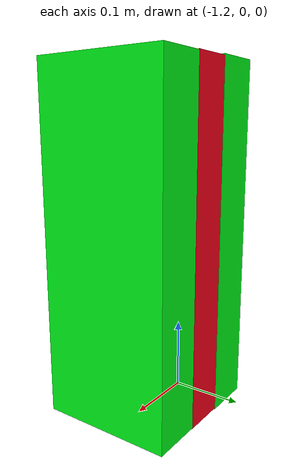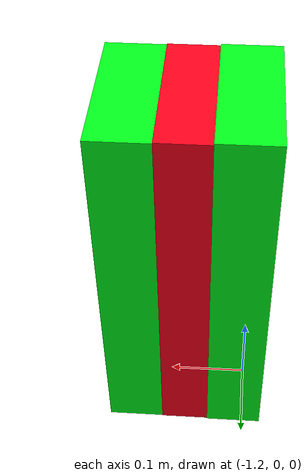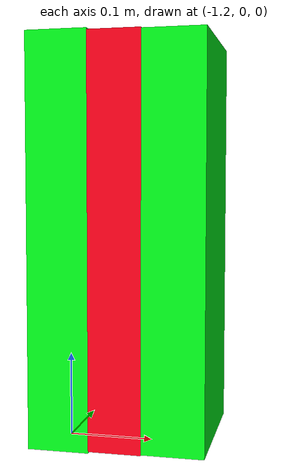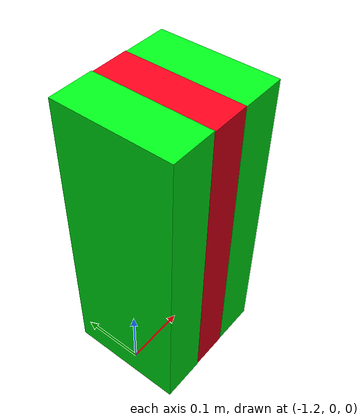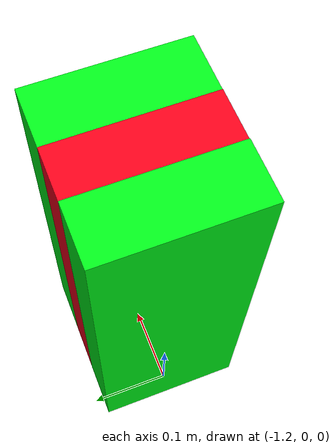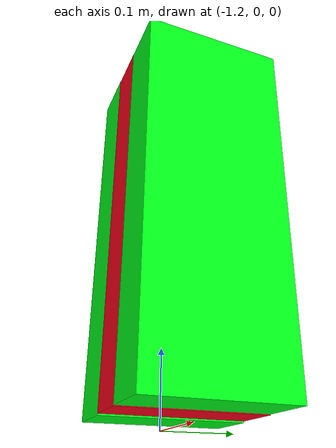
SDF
<?xml version='1.0'?>
<sdf version='1.6'>
  <model name='tress_vic_friendly'>
    <link name='link_0'>
      <inertial>
        <mass>9176.46</mass>
        <inertia>
          <ixx>937.577</ixx>
          <ixy>0</ixy>
          <ixz>0</ixz>
          <iyy>937.577</iyy>
          <iyz>0</iyz>
          <izz>1e+16</izz>
        </inertia>
        <pose frame=''>0 0 0 0 -0 0</pose>
      </inertial>
      <pose frame=''>-0.913403 0 0.2412 0 -0 0</pose>
      <gravity>1</gravity>
      <self_collide>0</self_collide>
      <kinematic>0</kinematic>
      <enable_wind>0</enable_wind>
      <visual name='ModelPreview_1::link_0::visual_2'>
        <pose frame=''>-0.145 0 0 0 -0 0</pose>
        <geometry>
          <box>
            <size>0.07 0.18 0.46</size>
          </box>
        </geometry>
        <material>
          <lighting>1</lighting>
          <script>
            <uri>file://media/materials/scripts/gazebo.material</uri>
            <name>Gazebo/Grey</name>
          </script>
          <shader type='vertex'>
            <normal_map>__default__</normal_map>
          </shader>
          <ambient>0 1 0.1 0</ambient>
          <diffuse>0.7 0.7 0.7 1</diffuse>
          <specular>0.01 0.01 0.01 1</specular>
          <emissive>0 0 0 1</emissive>
        </material>
        <transparency>0.1</transparency>
        <cast_shadows>1</cast_shadows>
      </visual>
      <visual name='ModelPreview_1::link_0::visual_1'>
        <pose frame=''>-0.275 0 0 0 -0 0</pose>
        <geometry>
          <box>
            <size>0.07 0.18 0.465462</size>
          </box>
        </geometry>
        <material>
          <lighting>1</lighting>
          <script>
            <uri>file://media/materials/scripts/gazebo.material</uri>
            <name>Gazebo/Grey</name>
          </script>
          <shader type='vertex'>
            <normal_map>__default__</normal_map>
          </shader>
          <ambient>0 1 0.1 1</ambient>
          <diffuse>0.7 0.7 0.7 1</diffuse>
          <specular>0.01 0.01 0.01 1</specular>
          <emissive>0 0 0 1</emissive>
        </material>
        <transparency>0.1</transparency>
        <cast_shadows>1</cast_shadows>
      </visual>
      <visual name='visual'>
        <pose frame=''>-0.21 0 0 0 -0 0</pose>
        <geometry>
          <box>
            <size>0.06 0.18 0.4618</size>
          </box>
        </geometry>
        <material>
          <lighting>1</lighting>
          <script>
            <uri>file://media/materials/scripts/gazebo.material</uri>
            <name>Gazebo/Grey</name>
          </script>
          <shader type='vertex'>
            <normal_map>__default__</normal_map>
          </shader>
          <ambient>1 0 0.1 0</ambient>
          <diffuse>0.7 0.7 0.7 1</diffuse>
          <specular>0.01 0.01 0.01 1</specular>
          <emissive>0 0 0 1</emissive>
        </material>
        <transparency>0.1</transparency>
        <cast_shadows>1</cast_shadows>
      </visual>
      <collision name='collision_2'>
        <laser_retro>0</laser_retro>
        <max_contacts>10</max_contacts>
        <pose frame=''>-0.145 0 0 0 -0 0</pose>
        <geometry>
          <box>
            <size>0.07 0.18 0.46</size>
          </box>
        </geometry>
        <surface>
          <friction>
            <ode>
              <mu>0.02</mu>
              <mu2>0.02</mu2>
              <fdir1>0 0 0</fdir1>
              <slip1>0</slip1>
              <slip2>0</slip2>
            </ode>
            <torsional>
              <coefficient>1</coefficient>
              <patch_radius>0</patch_radius>
              <surface_radius>0</surface_radius>
              <use_patch_radius>1</use_patch_radius>
              <ode>
                <slip>0</slip>
              </ode>
            </torsional>
          </friction>
          <bounce>
            <restitution_coefficient>0</restitution_coefficient>
            <threshold>1e+06</threshold>
          </bounce>
          <contact>
            <collide_without_contact>0</collide_without_contact>
            <collide_without_contact_bitmask>1</collide_without_contact_bitmask>
            <collide_bitmask>1</collide_bitmask>
            <ode>
              <soft_cfm>0</soft_cfm>
              <soft_erp>0.2</soft_erp>
              <kp>5000</kp>
              <kd>3</kd>
              <max_vel>0.01</max_vel>
              <min_depth>0</min_depth>
            </ode>
            <bullet>
              <split_impulse>1</split_impulse>
              <split_impulse_penetration_threshold>-0.01</split_impulse_penetration_threshold>
              <soft_cfm>0</soft_cfm>
              <soft_erp>0.2</soft_erp>
              <kp>5000</kp>
              <kd>3</kd>
            </bullet>
          </contact>
        </surface>
      </collision>
      <collision name='collision'>
        <laser_retro>0</laser_retro>
        <max_contacts>10</max_contacts>
        <pose frame=''>-0.21 0 0 0 -0 0</pose>
        <geometry>
          <box>
            <size>0.06 0.18 0.4618</size>
          </box>
        </geometry>
        <surface>
          <friction>
            <ode>
              <mu>0.02</mu>
              <mu2>0.02</mu2>
              <fdir1>0 0 0</fdir1>
              <slip1>0</slip1>
              <slip2>0</slip2>
            </ode>
            <torsional>
              <coefficient>1</coefficient>
              <patch_radius>0</patch_radius>
              <surface_radius>0</surface_radius>
              <use_patch_radius>1</use_patch_radius>
              <ode>
                <slip>0</slip>
              </ode>
            </torsional>
          </friction>
          <bounce>
            <restitution_coefficient>0</restitution_coefficient>
            <threshold>1e+06</threshold>
          </bounce>
          <contact>
            <collide_without_contact>0</collide_without_contact>
            <collide_without_contact_bitmask>1</collide_without_contact_bitmask>
            <collide_bitmask>1</collide_bitmask>
            <ode>
              <soft_cfm>0</soft_cfm>
              <soft_erp>0.2</soft_erp>
              <kp>10000</kp>
              <kd>1</kd>
              <max_vel>0.01</max_vel>
              <min_depth>0</min_depth>
            </ode>
            <bullet>
              <split_impulse>1</split_impulse>
              <split_impulse_penetration_threshold>-0.01</split_impulse_penetration_threshold>
              <soft_cfm>0</soft_cfm>
              <soft_erp>0.2</soft_erp>
              <kp>10000</kp>
              <kd>1</kd>
            </bullet>
          </contact>
        </surface>
      </collision>
      <collision name='collision_1'>
        <laser_retro>0</laser_retro>
        <max_contacts>10</max_contacts>
        <pose frame=''>-0.275 0 0 0 -0 0</pose>
        <geometry>
          <box>
            <size>0.07 0.18 0.465462</size>
          </box>
        </geometry>
        <surface>
          <friction>
            <ode>
              <mu>0.02</mu>
              <mu2>0.02</mu2>
              <fdir1>0 0 0</fdir1>
              <slip1>0</slip1>
              <slip2>0</slip2>
            </ode>
            <torsional>
              <coefficient>1</coefficient>
              <patch_radius>0</patch_radius>
              <surface_radius>0</surface_radius>
              <use_patch_radius>1</use_patch_radius>
              <ode>
                <slip>0</slip>
              </ode>
            </torsional>
          </friction>
          <bounce>
            <restitution_coefficient>0</restitution_coefficient>
            <threshold>1e+06</threshold>
          </bounce>
          <contact>
            <collide_without_contact>0</collide_without_contact>
            <collide_without_contact_bitmask>1</collide_without_contact_bitmask>
            <collide_bitmask>1</collide_bitmask>
            <ode>
              <soft_cfm>0</soft_cfm>
              <soft_erp>0.2</soft_erp>
              <kp>5000</kp>
              <kd>3</kd>
              <max_vel>0.01</max_vel>
              <min_depth>0</min_depth>
            </ode>
            <bullet>
              <split_impulse>1</split_impulse>
              <split_impulse_penetration_threshold>-0.01</split_impulse_penetration_threshold>
              <soft_cfm>0</soft_cfm>
              <soft_erp>0.2</soft_erp>
              <kp>5000</kp>
              <kd>3</kd>
            </bullet>
          </contact>
        </surface>
      </collision>
    </link>
    <static>1</static>
    <allow_auto_disable>1</allow_auto_disable>
  </model>
</sdf>
